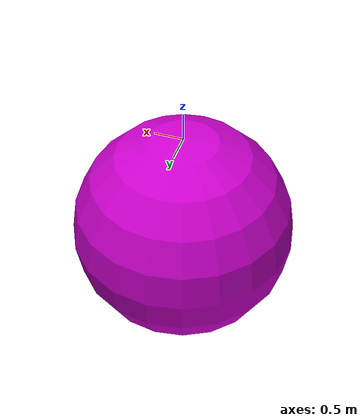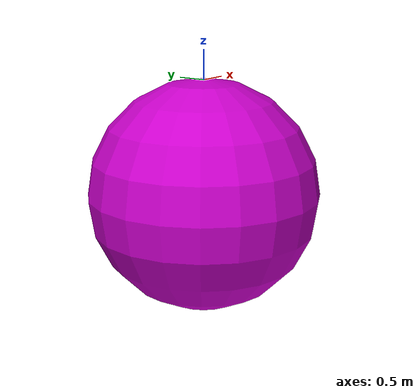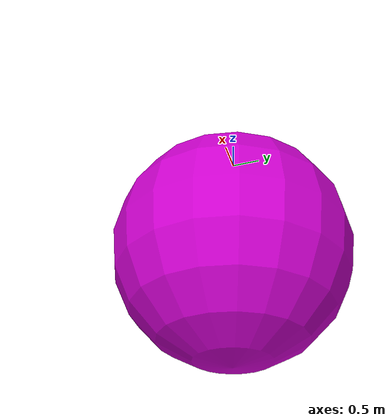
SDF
<?xml version="1.0" ?>
<sdf version="1.5">
    <model name="dump_1">
        <static>true</static>
        <link name="bump">
            <pose>0 0 -1.97 0 0 0</pose>
            <visual name="visual">
                <cast_shadows>0</cast_shadows>
                <geometry>
                    <sphere>
                        <radius>2</radius>
                    </sphere>
                </geometry>
                <material>
                    <specular>0.8 0.8 0.0 1</specular>
                    <ambient>0.8 0.8 0.0 1</ambient>
                    <diffuse>0.8 0.0 0.8 1</diffuse>
                    <emissive>0.0 0.8 0.8 1</emissive>
                </material>
            </visual>
            <collision name="collision">
                <geometry>
                    <sphere>
                        <radius>2</radius>
                    </sphere>
                </geometry>
                <surface>
                    <friction>
                        <ode>
                            <mu>10</mu>
                            <mu2>10</mu2>
                        </ode>
                    </friction>
                </surface>
            </collision>
        </link>
    </model>
</sdf>
